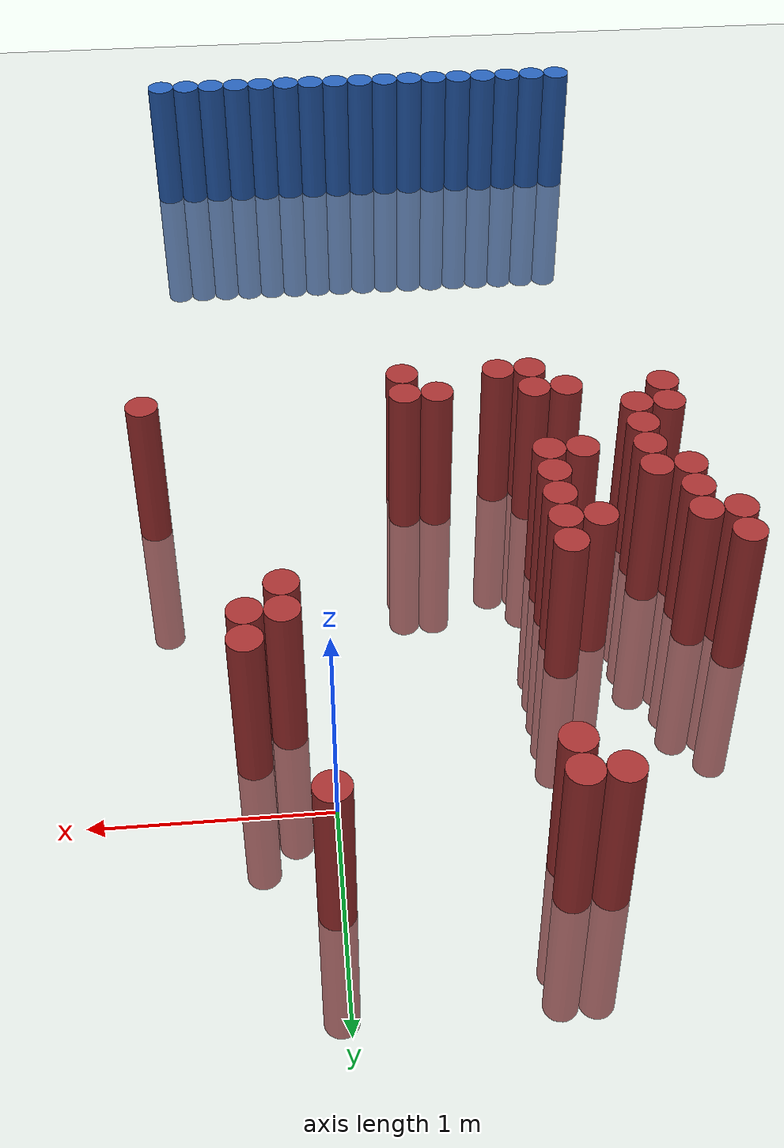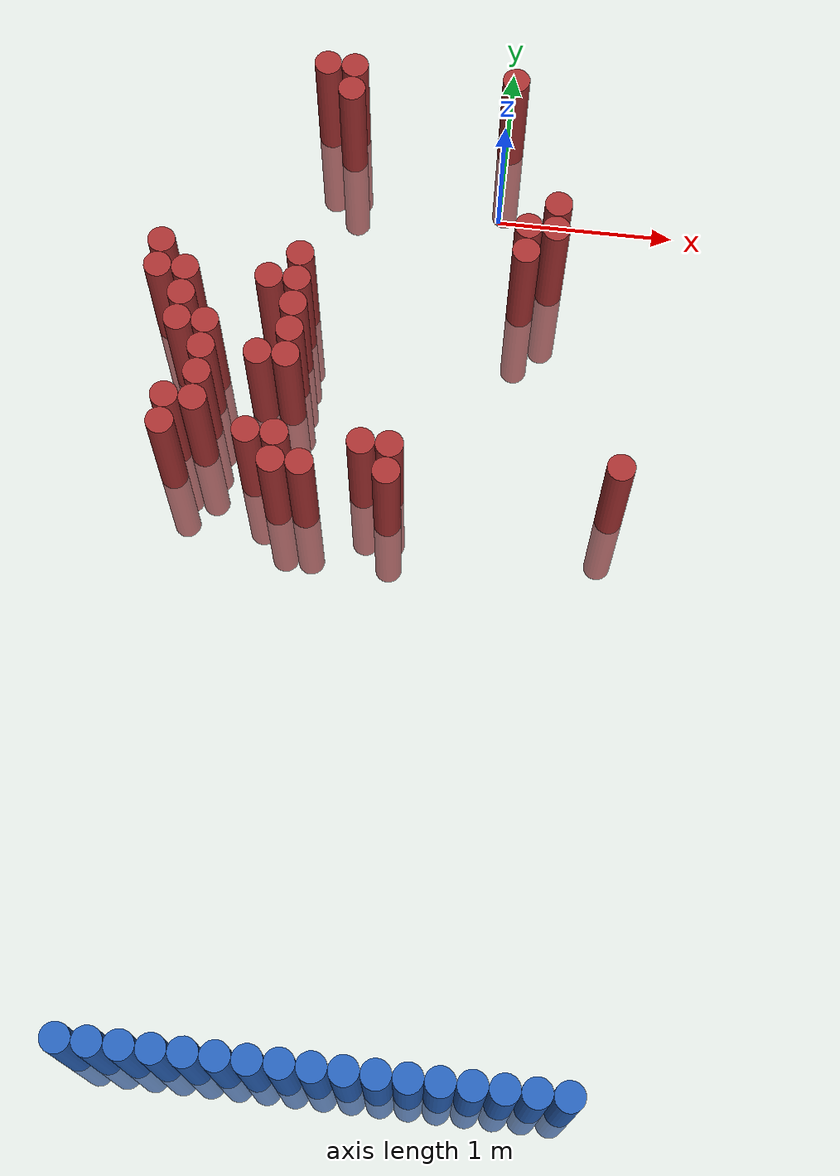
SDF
<sdf version="1.6">
 <world name="default">
  <model name="ground_plane">
   <static>1</static>
   <link name="link">
    <collision name="collision">
     <geometry><plane><normal>0 0 1</normal><size>100 100</size></plane></geometry>
     <surface><friction><ode><mu>100</mu><mu2>50</mu2></ode></friction></surface>
    </collision>
    <visual name="visual">
     <cast_shadows>0</cast_shadows>
     <geometry><plane><normal>0 0 1</normal><size>100 100</size></plane></geometry>
     <material>
      <script><uri>file://media/materials/scripts/gazebo.material</uri><name>Gazebo/Grey</name></script>
     </material>
    </visual>
   </link>
  </model>
  <model name="unit_cylinder_21">
   <static>1</static>
   <pose>0.775000 -4.925000 0.000000 0.000000 0.000000 0.000000</pose>
   <link name="link">
    <inertial>
     <mass>1</mass>
     <inertia><ixx>0.145833</ixx><ixy>0</ixy><ixz>0</ixz><iyy>0.145833</iyy><iyz>0</iyz><izz>0.125</izz></inertia>
    </inertial>
    <collision name="collision">
     <geometry><cylinder><radius>0.075000</radius><length>1.5</length></cylinder></geometry>
    </collision>
    <visual name="visual">
     <geometry><cylinder><radius>0.075000</radius><length>1.5</length></cylinder></geometry>
     <material>
      <ambient>0.152000 0.379000 0.720000 1</ambient>
      <diffuse>0.152000 0.379000 0.720000 1</diffuse>
     </material>
     <material>
      <script><name>Gazebo/Grey</name><uri>file://media/materials/scripts/gazebo.material</uri></script>
     </material>
    </visual>
   </link>
  </model>
  <model name="unit_cylinder_22">
   <static>1</static>
   <pose>0.625000 -4.925000 0.000000 0.000000 0.000000 0.000000</pose>
   <link name="link">
    <inertial>
     <mass>1</mass>
     <inertia><ixx>0.145833</ixx><ixy>0</ixy><ixz>0</ixz><iyy>0.145833</iyy><iyz>0</iyz><izz>0.125</izz></inertia>
    </inertial>
    <collision name="collision">
     <geometry><cylinder><radius>0.075000</radius><length>1.5</length></cylinder></geometry>
    </collision>
    <visual name="visual">
     <geometry><cylinder><radius>0.075000</radius><length>1.5</length></cylinder></geometry>
     <material>
      <ambient>0.152000 0.379000 0.720000 1</ambient>
      <diffuse>0.152000 0.379000 0.720000 1</diffuse>
     </material>
     <material>
      <script><name>Gazebo/Grey</name><uri>file://media/materials/scripts/gazebo.material</uri></script>
     </material>
    </visual>
   </link>
  </model>
  <model name="unit_cylinder_23">
   <static>1</static>
   <pose>0.475000 -4.925000 0.000000 0.000000 0.000000 0.000000</pose>
   <link name="link">
    <inertial>
     <mass>1</mass>
     <inertia><ixx>0.145833</ixx><ixy>0</ixy><ixz>0</ixz><iyy>0.145833</iyy><iyz>0</iyz><izz>0.125</izz></inertia>
    </inertial>
    <collision name="collision">
     <geometry><cylinder><radius>0.075000</radius><length>1.5</length></cylinder></geometry>
    </collision>
    <visual name="visual">
     <geometry><cylinder><radius>0.075000</radius><length>1.5</length></cylinder></geometry>
     <material>
      <ambient>0.152000 0.379000 0.720000 1</ambient>
      <diffuse>0.152000 0.379000 0.720000 1</diffuse>
     </material>
     <material>
      <script><name>Gazebo/Grey</name><uri>file://media/materials/scripts/gazebo.material</uri></script>
     </material>
    </visual>
   </link>
  </model>
  <model name="unit_cylinder_24">
   <static>1</static>
   <pose>0.325000 -4.925000 0.000000 0.000000 0.000000 0.000000</pose>
   <link name="link">
    <inertial>
     <mass>1</mass>
     <inertia><ixx>0.145833</ixx><ixy>0</ixy><ixz>0</ixz><iyy>0.145833</iyy><iyz>0</iyz><izz>0.125</izz></inertia>
    </inertial>
    <collision name="collision">
     <geometry><cylinder><radius>0.075000</radius><length>1.5</length></cylinder></geometry>
    </collision>
    <visual name="visual">
     <geometry><cylinder><radius>0.075000</radius><length>1.5</length></cylinder></geometry>
     <material>
      <ambient>0.152000 0.379000 0.720000 1</ambient>
      <diffuse>0.152000 0.379000 0.720000 1</diffuse>
     </material>
     <material>
      <script><name>Gazebo/Grey</name><uri>file://media/materials/scripts/gazebo.material</uri></script>
     </material>
    </visual>
   </link>
  </model>
  <model name="unit_cylinder_25">
   <static>1</static>
   <pose>0.175000 -4.925000 0.000000 0.000000 0.000000 0.000000</pose>
   <link name="link">
    <inertial>
     <mass>1</mass>
     <inertia><ixx>0.145833</ixx><ixy>0</ixy><ixz>0</ixz><iyy>0.145833</iyy><iyz>0</iyz><izz>0.125</izz></inertia>
    </inertial>
    <collision name="collision">
     <geometry><cylinder><radius>0.075000</radius><length>1.5</length></cylinder></geometry>
    </collision>
    <visual name="visual">
     <geometry><cylinder><radius>0.075000</radius><length>1.5</length></cylinder></geometry>
     <material>
      <ambient>0.152000 0.379000 0.720000 1</ambient>
      <diffuse>0.152000 0.379000 0.720000 1</diffuse>
     </material>
     <material>
      <script><name>Gazebo/Grey</name><uri>file://media/materials/scripts/gazebo.material</uri></script>
     </material>
    </visual>
   </link>
  </model>
  <model name="unit_cylinder_26">
   <static>1</static>
   <pose>0.025000 -4.925000 0.000000 0.000000 0.000000 0.000000</pose>
   <link name="link">
    <inertial>
     <mass>1</mass>
     <inertia><ixx>0.145833</ixx><ixy>0</ixy><ixz>0</ixz><iyy>0.145833</iyy><iyz>0</iyz><izz>0.125</izz></inertia>
    </inertial>
    <collision name="collision">
     <geometry><cylinder><radius>0.075000</radius><length>1.5</length></cylinder></geometry>
    </collision>
    <visual name="visual">
     <geometry><cylinder><radius>0.075000</radius><length>1.5</length></cylinder></geometry>
     <material>
      <ambient>0.152000 0.379000 0.720000 1</ambient>
      <diffuse>0.152000 0.379000 0.720000 1</diffuse>
     </material>
     <material>
      <script><name>Gazebo/Grey</name><uri>file://media/materials/scripts/gazebo.material</uri></script>
     </material>
    </visual>
   </link>
  </model>
  <model name="unit_cylinder_27">
   <static>1</static>
   <pose>-0.125000 -4.925000 0.000000 0.000000 0.000000 0.000000</pose>
   <link name="link">
    <inertial>
     <mass>1</mass>
     <inertia><ixx>0.145833</ixx><ixy>0</ixy><ixz>0</ixz><iyy>0.145833</iyy><iyz>0</iyz><izz>0.125</izz></inertia>
    </inertial>
    <collision name="collision">
     <geometry><cylinder><radius>0.075000</radius><length>1.5</length></cylinder></geometry>
    </collision>
    <visual name="visual">
     <geometry><cylinder><radius>0.075000</radius><length>1.5</length></cylinder></geometry>
     <material>
      <ambient>0.152000 0.379000 0.720000 1</ambient>
      <diffuse>0.152000 0.379000 0.720000 1</diffuse>
     </material>
     <material>
      <script><name>Gazebo/Grey</name><uri>file://media/materials/scripts/gazebo.material</uri></script>
     </material>
    </visual>
   </link>
  </model>
  <model name="unit_cylinder_28">
   <static>1</static>
   <pose>-0.275000 -4.925000 0.000000 0.000000 0.000000 0.000000</pose>
   <link name="link">
    <inertial>
     <mass>1</mass>
     <inertia><ixx>0.145833</ixx><ixy>0</ixy><ixz>0</ixz><iyy>0.145833</iyy><iyz>0</iyz><izz>0.125</izz></inertia>
    </inertial>
    <collision name="collision">
     <geometry><cylinder><radius>0.075000</radius><length>1.5</length></cylinder></geometry>
    </collision>
    <visual name="visual">
     <geometry><cylinder><radius>0.075000</radius><length>1.5</length></cylinder></geometry>
     <material>
      <ambient>0.152000 0.379000 0.720000 1</ambient>
      <diffuse>0.152000 0.379000 0.720000 1</diffuse>
     </material>
     <material>
      <script><name>Gazebo/Grey</name><uri>file://media/materials/scripts/gazebo.material</uri></script>
     </material>
    </visual>
   </link>
  </model>
  <model name="unit_cylinder_29">
   <static>1</static>
   <pose>-0.425000 -4.925000 0.000000 0.000000 0.000000 0.000000</pose>
   <link name="link">
    <inertial>
     <mass>1</mass>
     <inertia><ixx>0.145833</ixx><ixy>0</ixy><ixz>0</ixz><iyy>0.145833</iyy><iyz>0</iyz><izz>0.125</izz></inertia>
    </inertial>
    <collision name="collision">
     <geometry><cylinder><radius>0.075000</radius><length>1.5</length></cylinder></geometry>
    </collision>
    <visual name="visual">
     <geometry><cylinder><radius>0.075000</radius><length>1.5</length></cylinder></geometry>
     <material>
      <ambient>0.152000 0.379000 0.720000 1</ambient>
      <diffuse>0.152000 0.379000 0.720000 1</diffuse>
     </material>
     <material>
      <script><name>Gazebo/Grey</name><uri>file://media/materials/scripts/gazebo.material</uri></script>
     </material>
    </visual>
   </link>
  </model>
  <model name="unit_cylinder_30">
   <static>1</static>
   <pose>-0.575000 -4.925000 0.000000 0.000000 0.000000 0.000000</pose>
   <link name="link">
    <inertial>
     <mass>1</mass>
     <inertia><ixx>0.145833</ixx><ixy>0</ixy><ixz>0</ixz><iyy>0.145833</iyy><iyz>0</iyz><izz>0.125</izz></inertia>
    </inertial>
    <collision name="collision">
     <geometry><cylinder><radius>0.075000</radius><length>1.5</length></cylinder></geometry>
    </collision>
    <visual name="visual">
     <geometry><cylinder><radius>0.075000</radius><length>1.5</length></cylinder></geometry>
     <material>
      <ambient>0.152000 0.379000 0.720000 1</ambient>
      <diffuse>0.152000 0.379000 0.720000 1</diffuse>
     </material>
     <material>
      <script><name>Gazebo/Grey</name><uri>file://media/materials/scripts/gazebo.material</uri></script>
     </material>
    </visual>
   </link>
  </model>
  <model name="unit_cylinder_31">
   <static>1</static>
   <pose>-0.725000 -4.925000 0.000000 0.000000 0.000000 0.000000</pose>
   <link name="link">
    <inertial>
     <mass>1</mass>
     <inertia><ixx>0.145833</ixx><ixy>0</ixy><ixz>0</ixz><iyy>0.145833</iyy><iyz>0</iyz><izz>0.125</izz></inertia>
    </inertial>
    <collision name="collision">
     <geometry><cylinder><radius>0.075000</radius><length>1.5</length></cylinder></geometry>
    </collision>
    <visual name="visual">
     <geometry><cylinder><radius>0.075000</radius><length>1.5</length></cylinder></geometry>
     <material>
      <ambient>0.152000 0.379000 0.720000 1</ambient>
      <diffuse>0.152000 0.379000 0.720000 1</diffuse>
     </material>
     <material>
      <script><name>Gazebo/Grey</name><uri>file://media/materials/scripts/gazebo.material</uri></script>
     </material>
    </visual>
   </link>
  </model>
  <model name="unit_cylinder_32">
   <static>1</static>
   <pose>-0.875000 -4.925000 0.000000 0.000000 0.000000 0.000000</pose>
   <link name="link">
    <inertial>
     <mass>1</mass>
     <inertia><ixx>0.145833</ixx><ixy>0</ixy><ixz>0</ixz><iyy>0.145833</iyy><iyz>0</iyz><izz>0.125</izz></inertia>
    </inertial>
    <collision name="collision">
     <geometry><cylinder><radius>0.075000</radius><length>1.5</length></cylinder></geometry>
    </collision>
    <visual name="visual">
     <geometry><cylinder><radius>0.075000</radius><length>1.5</length></cylinder></geometry>
     <material>
      <ambient>0.152000 0.379000 0.720000 1</ambient>
      <diffuse>0.152000 0.379000 0.720000 1</diffuse>
     </material>
     <material>
      <script><name>Gazebo/Grey</name><uri>file://media/materials/scripts/gazebo.material</uri></script>
     </material>
    </visual>
   </link>
  </model>
  <model name="unit_cylinder_33">
   <static>1</static>
   <pose>-1.025000 -4.925000 0.000000 0.000000 0.000000 0.000000</pose>
   <link name="link">
    <inertial>
     <mass>1</mass>
     <inertia><ixx>0.145833</ixx><ixy>0</ixy><ixz>0</ixz><iyy>0.145833</iyy><iyz>0</iyz><izz>0.125</izz></inertia>
    </inertial>
    <collision name="collision">
     <geometry><cylinder><radius>0.075000</radius><length>1.5</length></cylinder></geometry>
    </collision>
    <visual name="visual">
     <geometry><cylinder><radius>0.075000</radius><length>1.5</length></cylinder></geometry>
     <material>
      <ambient>0.152000 0.379000 0.720000 1</ambient>
      <diffuse>0.152000 0.379000 0.720000 1</diffuse>
     </material>
     <material>
      <script><name>Gazebo/Grey</name><uri>file://media/materials/scripts/gazebo.material</uri></script>
     </material>
    </visual>
   </link>
  </model>
  <model name="unit_cylinder_34">
   <static>1</static>
   <pose>-1.175000 -4.925000 0.000000 0.000000 0.000000 0.000000</pose>
   <link name="link">
    <inertial>
     <mass>1</mass>
     <inertia><ixx>0.145833</ixx><ixy>0</ixy><ixz>0</ixz><iyy>0.145833</iyy><iyz>0</iyz><izz>0.125</izz></inertia>
    </inertial>
    <collision name="collision">
     <geometry><cylinder><radius>0.075000</radius><length>1.5</length></cylinder></geometry>
    </collision>
    <visual name="visual">
     <geometry><cylinder><radius>0.075000</radius><length>1.5</length></cylinder></geometry>
     <material>
      <ambient>0.152000 0.379000 0.720000 1</ambient>
      <diffuse>0.152000 0.379000 0.720000 1</diffuse>
     </material>
     <material>
      <script><name>Gazebo/Grey</name><uri>file://media/materials/scripts/gazebo.material</uri></script>
     </material>
    </visual>
   </link>
  </model>
  <model name="unit_cylinder_35">
   <static>1</static>
   <pose>-1.325000 -4.925000 0.000000 0.000000 0.000000 0.000000</pose>
   <link name="link">
    <inertial>
     <mass>1</mass>
     <inertia><ixx>0.145833</ixx><ixy>0</ixy><ixz>0</ixz><iyy>0.145833</iyy><iyz>0</iyz><izz>0.125</izz></inertia>
    </inertial>
    <collision name="collision">
     <geometry><cylinder><radius>0.075000</radius><length>1.5</length></cylinder></geometry>
    </collision>
    <visual name="visual">
     <geometry><cylinder><radius>0.075000</radius><length>1.5</length></cylinder></geometry>
     <material>
      <ambient>0.152000 0.379000 0.720000 1</ambient>
      <diffuse>0.152000 0.379000 0.720000 1</diffuse>
     </material>
     <material>
      <script><name>Gazebo/Grey</name><uri>file://media/materials/scripts/gazebo.material</uri></script>
     </material>
    </visual>
   </link>
  </model>
  <model name="unit_cylinder_36">
   <static>1</static>
   <pose>-1.475000 -4.925000 0.000000 0.000000 0.000000 0.000000</pose>
   <link name="link">
    <inertial>
     <mass>1</mass>
     <inertia><ixx>0.145833</ixx><ixy>0</ixy><ixz>0</ixz><iyy>0.145833</iyy><iyz>0</iyz><izz>0.125</izz></inertia>
    </inertial>
    <collision name="collision">
     <geometry><cylinder><radius>0.075000</radius><length>1.5</length></cylinder></geometry>
    </collision>
    <visual name="visual">
     <geometry><cylinder><radius>0.075000</radius><length>1.5</length></cylinder></geometry>
     <material>
      <ambient>0.152000 0.379000 0.720000 1</ambient>
      <diffuse>0.152000 0.379000 0.720000 1</diffuse>
     </material>
     <material>
      <script><name>Gazebo/Grey</name><uri>file://media/materials/scripts/gazebo.material</uri></script>
     </material>
    </visual>
   </link>
  </model>
  <model name="unit_cylinder_37">
   <static>1</static>
   <pose>-1.625000 -4.925000 0.000000 0.000000 0.000000 0.000000</pose>
   <link name="link">
    <inertial>
     <mass>1</mass>
     <inertia><ixx>0.145833</ixx><ixy>0</ixy><ixz>0</ixz><iyy>0.145833</iyy><iyz>0</iyz><izz>0.125</izz></inertia>
    </inertial>
    <collision name="collision">
     <geometry><cylinder><radius>0.075000</radius><length>1.5</length></cylinder></geometry>
    </collision>
    <visual name="visual">
     <geometry><cylinder><radius>0.075000</radius><length>1.5</length></cylinder></geometry>
     <material>
      <ambient>0.152000 0.379000 0.720000 1</ambient>
      <diffuse>0.152000 0.379000 0.720000 1</diffuse>
     </material>
     <material>
      <script><name>Gazebo/Grey</name><uri>file://media/materials/scripts/gazebo.material</uri></script>
     </material>
    </visual>
   </link>
  </model>
  <model name="unit_cylinder_333">
   <static>1</static>
   <pose>-1.775000 -0.875000 0.000000 0.000000 0.000000 0.000000</pose>
   <link name="link">
    <inertial>
     <mass>1</mass>
     <inertia><ixx>0.145833</ixx><ixy>0</ixy><ixz>0</ixz><iyy>0.145833</iyy><iyz>0</iyz><izz>0.125</izz></inertia>
    </inertial>
    <collision name="collision">
     <geometry><cylinder><radius>0.075000</radius><length>1.5</length></cylinder></geometry>
    </collision>
    <visual name="visual">
     <geometry><cylinder><radius>0.075000</radius><length>1.5</length></cylinder></geometry>
     <material>
      <ambient>0.648000 0.192000 0.192000 1</ambient>
      <diffuse>0.648000 0.192000 0.192000 1</diffuse>
     </material>
     <material>
      <script><name>Gazebo/Grey</name><uri>file://media/materials/scripts/gazebo.material</uri></script>
     </material>
    </visual>
   </link>
  </model>
  <model name="unit_cylinder_334">
   <static>1</static>
   <pose>-1.775000 -0.725000 0.000000 0.000000 0.000000 0.000000</pose>
   <link name="link">
    <inertial>
     <mass>1</mass>
     <inertia><ixx>0.145833</ixx><ixy>0</ixy><ixz>0</ixz><iyy>0.145833</iyy><iyz>0</iyz><izz>0.125</izz></inertia>
    </inertial>
    <collision name="collision">
     <geometry><cylinder><radius>0.075000</radius><length>1.5</length></cylinder></geometry>
    </collision>
    <visual name="visual">
     <geometry><cylinder><radius>0.075000</radius><length>1.5</length></cylinder></geometry>
     <material>
      <ambient>0.648000 0.192000 0.192000 1</ambient>
      <diffuse>0.648000 0.192000 0.192000 1</diffuse>
     </material>
     <material>
      <script><name>Gazebo/Grey</name><uri>file://media/materials/scripts/gazebo.material</uri></script>
     </material>
    </visual>
   </link>
  </model>
  <model name="unit_cylinder_340">
   <static>1</static>
   <pose>-1.625000 -1.775000 0.000000 0.000000 0.000000 0.000000</pose>
   <link name="link">
    <inertial>
     <mass>1</mass>
     <inertia><ixx>0.145833</ixx><ixy>0</ixy><ixz>0</ixz><iyy>0.145833</iyy><iyz>0</iyz><izz>0.125</izz></inertia>
    </inertial>
    <collision name="collision">
     <geometry><cylinder><radius>0.075000</radius><length>1.5</length></cylinder></geometry>
    </collision>
    <visual name="visual">
     <geometry><cylinder><radius>0.075000</radius><length>1.5</length></cylinder></geometry>
     <material>
      <ambient>0.648000 0.192000 0.192000 1</ambient>
      <diffuse>0.648000 0.192000 0.192000 1</diffuse>
     </material>
     <material>
      <script><name>Gazebo/Grey</name><uri>file://media/materials/scripts/gazebo.material</uri></script>
     </material>
    </visual>
   </link>
  </model>
  <model name="unit_cylinder_341">
   <static>1</static>
   <pose>-1.625000 -1.625000 0.000000 0.000000 0.000000 0.000000</pose>
   <link name="link">
    <inertial>
     <mass>1</mass>
     <inertia><ixx>0.145833</ixx><ixy>0</ixy><ixz>0</ixz><iyy>0.145833</iyy><iyz>0</iyz><izz>0.125</izz></inertia>
    </inertial>
    <collision name="collision">
     <geometry><cylinder><radius>0.075000</radius><length>1.5</length></cylinder></geometry>
    </collision>
    <visual name="visual">
     <geometry><cylinder><radius>0.075000</radius><length>1.5</length></cylinder></geometry>
     <material>
      <ambient>0.648000 0.192000 0.192000 1</ambient>
      <diffuse>0.648000 0.192000 0.192000 1</diffuse>
     </material>
     <material>
      <script><name>Gazebo/Grey</name><uri>file://media/materials/scripts/gazebo.material</uri></script>
     </material>
    </visual>
   </link>
  </model>
  <model name="unit_cylinder_342">
   <static>1</static>
   <pose>-1.625000 -1.175000 0.000000 0.000000 0.000000 0.000000</pose>
   <link name="link">
    <inertial>
     <mass>1</mass>
     <inertia><ixx>0.145833</ixx><ixy>0</ixy><ixz>0</ixz><iyy>0.145833</iyy><iyz>0</iyz><izz>0.125</izz></inertia>
    </inertial>
    <collision name="collision">
     <geometry><cylinder><radius>0.075000</radius><length>1.5</length></cylinder></geometry>
    </collision>
    <visual name="visual">
     <geometry><cylinder><radius>0.075000</radius><length>1.5</length></cylinder></geometry>
     <material>
      <ambient>0.648000 0.192000 0.192000 1</ambient>
      <diffuse>0.648000 0.192000 0.192000 1</diffuse>
     </material>
     <material>
      <script><name>Gazebo/Grey</name><uri>file://media/materials/scripts/gazebo.material</uri></script>
     </material>
    </visual>
   </link>
  </model>
  <model name="unit_cylinder_343">
   <static>1</static>
   <pose>-1.625000 -1.025000 0.000000 0.000000 0.000000 0.000000</pose>
   <link name="link">
    <inertial>
     <mass>1</mass>
     <inertia><ixx>0.145833</ixx><ixy>0</ixy><ixz>0</ixz><iyy>0.145833</iyy><iyz>0</iyz><izz>0.125</izz></inertia>
    </inertial>
    <collision name="collision">
     <geometry><cylinder><radius>0.075000</radius><length>1.5</length></cylinder></geometry>
    </collision>
    <visual name="visual">
     <geometry><cylinder><radius>0.075000</radius><length>1.5</length></cylinder></geometry>
     <material>
      <ambient>0.648000 0.192000 0.192000 1</ambient>
      <diffuse>0.648000 0.192000 0.192000 1</diffuse>
     </material>
     <material>
      <script><name>Gazebo/Grey</name><uri>file://media/materials/scripts/gazebo.material</uri></script>
     </material>
    </visual>
   </link>
  </model>
  <model name="unit_cylinder_344">
   <static>1</static>
   <pose>-1.625000 -0.875000 0.000000 0.000000 0.000000 0.000000</pose>
   <link name="link">
    <inertial>
     <mass>1</mass>
     <inertia><ixx>0.145833</ixx><ixy>0</ixy><ixz>0</ixz><iyy>0.145833</iyy><iyz>0</iyz><izz>0.125</izz></inertia>
    </inertial>
    <collision name="collision">
     <geometry><cylinder><radius>0.075000</radius><length>1.5</length></cylinder></geometry>
    </collision>
    <visual name="visual">
     <geometry><cylinder><radius>0.075000</radius><length>1.5</length></cylinder></geometry>
     <material>
      <ambient>0.648000 0.192000 0.192000 1</ambient>
      <diffuse>0.648000 0.192000 0.192000 1</diffuse>
     </material>
     <material>
      <script><name>Gazebo/Grey</name><uri>file://media/materials/scripts/gazebo.material</uri></script>
     </material>
    </visual>
   </link>
  </model>
  <model name="unit_cylinder_353">
   <static>1</static>
   <pose>-1.475000 -1.625000 0.000000 0.000000 0.000000 0.000000</pose>
   <link name="link">
    <inertial>
     <mass>1</mass>
     <inertia><ixx>0.145833</ixx><ixy>0</ixy><ixz>0</ixz><iyy>0.145833</iyy><iyz>0</iyz><izz>0.125</izz></inertia>
    </inertial>
    <collision name="collision">
     <geometry><cylinder><radius>0.075000</radius><length>1.5</length></cylinder></geometry>
    </collision>
    <visual name="visual">
     <geometry><cylinder><radius>0.075000</radius><length>1.5</length></cylinder></geometry>
     <material>
      <ambient>0.648000 0.192000 0.192000 1</ambient>
      <diffuse>0.648000 0.192000 0.192000 1</diffuse>
     </material>
     <material>
      <script><name>Gazebo/Grey</name><uri>file://media/materials/scripts/gazebo.material</uri></script>
     </material>
    </visual>
   </link>
  </model>
  <model name="unit_cylinder_354">
   <static>1</static>
   <pose>-1.475000 -1.475000 0.000000 0.000000 0.000000 0.000000</pose>
   <link name="link">
    <inertial>
     <mass>1</mass>
     <inertia><ixx>0.145833</ixx><ixy>0</ixy><ixz>0</ixz><iyy>0.145833</iyy><iyz>0</iyz><izz>0.125</izz></inertia>
    </inertial>
    <collision name="collision">
     <geometry><cylinder><radius>0.075000</radius><length>1.5</length></cylinder></geometry>
    </collision>
    <visual name="visual">
     <geometry><cylinder><radius>0.075000</radius><length>1.5</length></cylinder></geometry>
     <material>
      <ambient>0.648000 0.192000 0.192000 1</ambient>
      <diffuse>0.648000 0.192000 0.192000 1</diffuse>
     </material>
     <material>
      <script><name>Gazebo/Grey</name><uri>file://media/materials/scripts/gazebo.material</uri></script>
     </material>
    </visual>
   </link>
  </model>
  <model name="unit_cylinder_355">
   <static>1</static>
   <pose>-1.475000 -1.325000 0.000000 0.000000 0.000000 0.000000</pose>
   <link name="link">
    <inertial>
     <mass>1</mass>
     <inertia><ixx>0.145833</ixx><ixy>0</ixy><ixz>0</ixz><iyy>0.145833</iyy><iyz>0</iyz><izz>0.125</izz></inertia>
    </inertial>
    <collision name="collision">
     <geometry><cylinder><radius>0.075000</radius><length>1.5</length></cylinder></geometry>
    </collision>
    <visual name="visual">
     <geometry><cylinder><radius>0.075000</radius><length>1.5</length></cylinder></geometry>
     <material>
      <ambient>0.648000 0.192000 0.192000 1</ambient>
      <diffuse>0.648000 0.192000 0.192000 1</diffuse>
     </material>
     <material>
      <script><name>Gazebo/Grey</name><uri>file://media/materials/scripts/gazebo.material</uri></script>
     </material>
    </visual>
   </link>
  </model>
  <model name="unit_cylinder_356">
   <static>1</static>
   <pose>-1.475000 -1.175000 0.000000 0.000000 0.000000 0.000000</pose>
   <link name="link">
    <inertial>
     <mass>1</mass>
     <inertia><ixx>0.145833</ixx><ixy>0</ixy><ixz>0</ixz><iyy>0.145833</iyy><iyz>0</iyz><izz>0.125</izz></inertia>
    </inertial>
    <collision name="collision">
     <geometry><cylinder><radius>0.075000</radius><length>1.5</length></cylinder></geometry>
    </collision>
    <visual name="visual">
     <geometry><cylinder><radius>0.075000</radius><length>1.5</length></cylinder></geometry>
     <material>
      <ambient>0.648000 0.192000 0.192000 1</ambient>
      <diffuse>0.648000 0.192000 0.192000 1</diffuse>
     </material>
     <material>
      <script><name>Gazebo/Grey</name><uri>file://media/materials/scripts/gazebo.material</uri></script>
     </material>
    </visual>
   </link>
  </model>
  <model name="unit_cylinder_365">
   <static>1</static>
   <pose>-1.175000 -1.775000 0.000000 0.000000 0.000000 0.000000</pose>
   <link name="link">
    <inertial>
     <mass>1</mass>
     <inertia><ixx>0.145833</ixx><ixy>0</ixy><ixz>0</ixz><iyy>0.145833</iyy><iyz>0</iyz><izz>0.125</izz></inertia>
    </inertial>
    <collision name="collision">
     <geometry><cylinder><radius>0.075000</radius><length>1.5</length></cylinder></geometry>
    </collision>
    <visual name="visual">
     <geometry><cylinder><radius>0.075000</radius><length>1.5</length></cylinder></geometry>
     <material>
      <ambient>0.648000 0.192000 0.192000 1</ambient>
      <diffuse>0.648000 0.192000 0.192000 1</diffuse>
     </material>
     <material>
      <script><name>Gazebo/Grey</name><uri>file://media/materials/scripts/gazebo.material</uri></script>
     </material>
    </visual>
   </link>
  </model>
  <model name="unit_cylinder_366">
   <static>1</static>
   <pose>-1.175000 -1.325000 0.000000 0.000000 0.000000 0.000000</pose>
   <link name="link">
    <inertial>
     <mass>1</mass>
     <inertia><ixx>0.145833</ixx><ixy>0</ixy><ixz>0</ixz><iyy>0.145833</iyy><iyz>0</iyz><izz>0.125</izz></inertia>
    </inertial>
    <collision name="collision">
     <geometry><cylinder><radius>0.075000</radius><length>1.5</length></cylinder></geometry>
    </collision>
    <visual name="visual">
     <geometry><cylinder><radius>0.075000</radius><length>1.5</length></cylinder></geometry>
     <material>
      <ambient>0.648000 0.192000 0.192000 1</ambient>
      <diffuse>0.648000 0.192000 0.192000 1</diffuse>
     </material>
     <material>
      <script><name>Gazebo/Grey</name><uri>file://media/materials/scripts/gazebo.material</uri></script>
     </material>
    </visual>
   </link>
  </model>
  <model name="unit_cylinder_367">
   <static>1</static>
   <pose>-1.175000 -0.875000 0.000000 0.000000 0.000000 0.000000</pose>
   <link name="link">
    <inertial>
     <mass>1</mass>
     <inertia><ixx>0.145833</ixx><ixy>0</ixy><ixz>0</ixz><iyy>0.145833</iyy><iyz>0</iyz><izz>0.125</izz></inertia>
    </inertial>
    <collision name="collision">
     <geometry><cylinder><radius>0.075000</radius><length>1.5</length></cylinder></geometry>
    </collision>
    <visual name="visual">
     <geometry><cylinder><radius>0.075000</radius><length>1.5</length></cylinder></geometry>
     <material>
      <ambient>0.648000 0.192000 0.192000 1</ambient>
      <diffuse>0.648000 0.192000 0.192000 1</diffuse>
     </material>
     <material>
      <script><name>Gazebo/Grey</name><uri>file://media/materials/scripts/gazebo.material</uri></script>
     </material>
    </visual>
   </link>
  </model>
  <model name="unit_cylinder_369">
   <static>1</static>
   <pose>-1.025000 -1.925000 0.000000 0.000000 0.000000 0.000000</pose>
   <link name="link">
    <inertial>
     <mass>1</mass>
     <inertia><ixx>0.145833</ixx><ixy>0</ixy><ixz>0</ixz><iyy>0.145833</iyy><iyz>0</iyz><izz>0.125</izz></inertia>
    </inertial>
    <collision name="collision">
     <geometry><cylinder><radius>0.075000</radius><length>1.5</length></cylinder></geometry>
    </collision>
    <visual name="visual">
     <geometry><cylinder><radius>0.075000</radius><length>1.5</length></cylinder></geometry>
     <material>
      <ambient>0.648000 0.192000 0.192000 1</ambient>
      <diffuse>0.648000 0.192000 0.192000 1</diffuse>
     </material>
     <material>
      <script><name>Gazebo/Grey</name><uri>file://media/materials/scripts/gazebo.material</uri></script>
     </material>
    </visual>
   </link>
  </model>
  <model name="unit_cylinder_370">
   <static>1</static>
   <pose>-1.025000 -1.775000 0.000000 0.000000 0.000000 0.000000</pose>
   <link name="link">
    <inertial>
     <mass>1</mass>
     <inertia><ixx>0.145833</ixx><ixy>0</ixy><ixz>0</ixz><iyy>0.145833</iyy><iyz>0</iyz><izz>0.125</izz></inertia>
    </inertial>
    <collision name="collision">
     <geometry><cylinder><radius>0.075000</radius><length>1.5</length></cylinder></geometry>
    </collision>
    <visual name="visual">
     <geometry><cylinder><radius>0.075000</radius><length>1.5</length></cylinder></geometry>
     <material>
      <ambient>0.648000 0.192000 0.192000 1</ambient>
      <diffuse>0.648000 0.192000 0.192000 1</diffuse>
     </material>
     <material>
      <script><name>Gazebo/Grey</name><uri>file://media/materials/scripts/gazebo.material</uri></script>
     </material>
    </visual>
   </link>
  </model>
  <model name="unit_cylinder_371">
   <static>1</static>
   <pose>-1.025000 -1.325000 0.000000 0.000000 0.000000 0.000000</pose>
   <link name="link">
    <inertial>
     <mass>1</mass>
     <inertia><ixx>0.145833</ixx><ixy>0</ixy><ixz>0</ixz><iyy>0.145833</iyy><iyz>0</iyz><izz>0.125</izz></inertia>
    </inertial>
    <collision name="collision">
     <geometry><cylinder><radius>0.075000</radius><length>1.5</length></cylinder></geometry>
    </collision>
    <visual name="visual">
     <geometry><cylinder><radius>0.075000</radius><length>1.5</length></cylinder></geometry>
     <material>
      <ambient>0.648000 0.192000 0.192000 1</ambient>
      <diffuse>0.648000 0.192000 0.192000 1</diffuse>
     </material>
     <material>
      <script><name>Gazebo/Grey</name><uri>file://media/materials/scripts/gazebo.material</uri></script>
     </material>
    </visual>
   </link>
  </model>
  <model name="unit_cylinder_372">
   <static>1</static>
   <pose>-1.025000 -1.175000 0.000000 0.000000 0.000000 0.000000</pose>
   <link name="link">
    <inertial>
     <mass>1</mass>
     <inertia><ixx>0.145833</ixx><ixy>0</ixy><ixz>0</ixz><iyy>0.145833</iyy><iyz>0</iyz><izz>0.125</izz></inertia>
    </inertial>
    <collision name="collision">
     <geometry><cylinder><radius>0.075000</radius><length>1.5</length></cylinder></geometry>
    </collision>
    <visual name="visual">
     <geometry><cylinder><radius>0.075000</radius><length>1.5</length></cylinder></geometry>
     <material>
      <ambient>0.648000 0.192000 0.192000 1</ambient>
      <diffuse>0.648000 0.192000 0.192000 1</diffuse>
     </material>
     <material>
      <script><name>Gazebo/Grey</name><uri>file://media/materials/scripts/gazebo.material</uri></script>
     </material>
    </visual>
   </link>
  </model>
  <model name="unit_cylinder_373">
   <static>1</static>
   <pose>-1.025000 -1.025000 0.000000 0.000000 0.000000 0.000000</pose>
   <link name="link">
    <inertial>
     <mass>1</mass>
     <inertia><ixx>0.145833</ixx><ixy>0</ixy><ixz>0</ixz><iyy>0.145833</iyy><iyz>0</iyz><izz>0.125</izz></inertia>
    </inertial>
    <collision name="collision">
     <geometry><cylinder><radius>0.075000</radius><length>1.5</length></cylinder></geometry>
    </collision>
    <visual name="visual">
     <geometry><cylinder><radius>0.075000</radius><length>1.5</length></cylinder></geometry>
     <material>
      <ambient>0.648000 0.192000 0.192000 1</ambient>
      <diffuse>0.648000 0.192000 0.192000 1</diffuse>
     </material>
     <material>
      <script><name>Gazebo/Grey</name><uri>file://media/materials/scripts/gazebo.material</uri></script>
     </material>
    </visual>
   </link>
  </model>
  <model name="unit_cylinder_374">
   <static>1</static>
   <pose>-1.025000 -0.875000 0.000000 0.000000 0.000000 0.000000</pose>
   <link name="link">
    <inertial>
     <mass>1</mass>
     <inertia><ixx>0.145833</ixx><ixy>0</ixy><ixz>0</ixz><iyy>0.145833</iyy><iyz>0</iyz><izz>0.125</izz></inertia>
    </inertial>
    <collision name="collision">
     <geometry><cylinder><radius>0.075000</radius><length>1.5</length></cylinder></geometry>
    </collision>
    <visual name="visual">
     <geometry><cylinder><radius>0.075000</radius><length>1.5</length></cylinder></geometry>
     <material>
      <ambient>0.648000 0.192000 0.192000 1</ambient>
      <diffuse>0.648000 0.192000 0.192000 1</diffuse>
     </material>
     <material>
      <script><name>Gazebo/Grey</name><uri>file://media/materials/scripts/gazebo.material</uri></script>
     </material>
    </visual>
   </link>
  </model>
  <model name="unit_cylinder_375">
   <static>1</static>
   <pose>-1.025000 -0.725000 0.000000 0.000000 0.000000 0.000000</pose>
   <link name="link">
    <inertial>
     <mass>1</mass>
     <inertia><ixx>0.145833</ixx><ixy>0</ixy><ixz>0</ixz><iyy>0.145833</iyy><iyz>0</iyz><izz>0.125</izz></inertia>
    </inertial>
    <collision name="collision">
     <geometry><cylinder><radius>0.075000</radius><length>1.5</length></cylinder></geometry>
    </collision>
    <visual name="visual">
     <geometry><cylinder><radius>0.075000</radius><length>1.5</length></cylinder></geometry>
     <material>
      <ambient>0.648000 0.192000 0.192000 1</ambient>
      <diffuse>0.648000 0.192000 0.192000 1</diffuse>
     </material>
     <material>
      <script><name>Gazebo/Grey</name><uri>file://media/materials/scripts/gazebo.material</uri></script>
     </material>
    </visual>
   </link>
  </model>
  <model name="unit_cylinder_376">
   <static>1</static>
   <pose>-1.025000 0.475000 0.000000 0.000000 0.000000 0.000000</pose>
   <link name="link">
    <inertial>
     <mass>1</mass>
     <inertia><ixx>0.145833</ixx><ixy>0</ixy><ixz>0</ixz><iyy>0.145833</iyy><iyz>0</iyz><izz>0.125</izz></inertia>
    </inertial>
    <collision name="collision">
     <geometry><cylinder><radius>0.075000</radius><length>1.5</length></cylinder></geometry>
    </collision>
    <visual name="visual">
     <geometry><cylinder><radius>0.075000</radius><length>1.5</length></cylinder></geometry>
     <material>
      <ambient>0.648000 0.192000 0.192000 1</ambient>
      <diffuse>0.648000 0.192000 0.192000 1</diffuse>
     </material>
     <material>
      <script><name>Gazebo/Grey</name><uri>file://media/materials/scripts/gazebo.material</uri></script>
     </material>
    </visual>
   </link>
  </model>
  <model name="unit_cylinder_382">
   <static>1</static>
   <pose>-0.875000 -1.925000 0.000000 0.000000 0.000000 0.000000</pose>
   <link name="link">
    <inertial>
     <mass>1</mass>
     <inertia><ixx>0.145833</ixx><ixy>0</ixy><ixz>0</ixz><iyy>0.145833</iyy><iyz>0</iyz><izz>0.125</izz></inertia>
    </inertial>
    <collision name="collision">
     <geometry><cylinder><radius>0.075000</radius><length>1.5</length></cylinder></geometry>
    </collision>
    <visual name="visual">
     <geometry><cylinder><radius>0.075000</radius><length>1.5</length></cylinder></geometry>
     <material>
      <ambient>0.648000 0.192000 0.192000 1</ambient>
      <diffuse>0.648000 0.192000 0.192000 1</diffuse>
     </material>
     <material>
      <script><name>Gazebo/Grey</name><uri>file://media/materials/scripts/gazebo.material</uri></script>
     </material>
    </visual>
   </link>
  </model>
  <model name="unit_cylinder_383">
   <static>1</static>
   <pose>-0.875000 0.325000 0.000000 0.000000 0.000000 0.000000</pose>
   <link name="link">
    <inertial>
     <mass>1</mass>
     <inertia><ixx>0.145833</ixx><ixy>0</ixy><ixz>0</ixz><iyy>0.145833</iyy><iyz>0</iyz><izz>0.125</izz></inertia>
    </inertial>
    <collision name="collision">
     <geometry><cylinder><radius>0.075000</radius><length>1.5</length></cylinder></geometry>
    </collision>
    <visual name="visual">
     <geometry><cylinder><radius>0.075000</radius><length>1.5</length></cylinder></geometry>
     <material>
      <ambient>0.648000 0.192000 0.192000 1</ambient>
      <diffuse>0.648000 0.192000 0.192000 1</diffuse>
     </material>
     <material>
      <script><name>Gazebo/Grey</name><uri>file://media/materials/scripts/gazebo.material</uri></script>
     </material>
    </visual>
   </link>
  </model>
  <model name="unit_cylinder_384">
   <static>1</static>
   <pose>-0.875000 0.475000 0.000000 0.000000 0.000000 0.000000</pose>
   <link name="link">
    <inertial>
     <mass>1</mass>
     <inertia><ixx>0.145833</ixx><ixy>0</ixy><ixz>0</ixz><iyy>0.145833</iyy><iyz>0</iyz><izz>0.125</izz></inertia>
    </inertial>
    <collision name="collision">
     <geometry><cylinder><radius>0.075000</radius><length>1.5</length></cylinder></geometry>
    </collision>
    <visual name="visual">
     <geometry><cylinder><radius>0.075000</radius><length>1.5</length></cylinder></geometry>
     <material>
      <ambient>0.648000 0.192000 0.192000 1</ambient>
      <diffuse>0.648000 0.192000 0.192000 1</diffuse>
     </material>
     <material>
      <script><name>Gazebo/Grey</name><uri>file://media/materials/scripts/gazebo.material</uri></script>
     </material>
    </visual>
   </link>
  </model>
  <model name="unit_cylinder_396">
   <static>1</static>
   <pose>-0.575000 -1.775000 0.000000 0.000000 0.000000 0.000000</pose>
   <link name="link">
    <inertial>
     <mass>1</mass>
     <inertia><ixx>0.145833</ixx><ixy>0</ixy><ixz>0</ixz><iyy>0.145833</iyy><iyz>0</iyz><izz>0.125</izz></inertia>
    </inertial>
    <collision name="collision">
     <geometry><cylinder><radius>0.075000</radius><length>1.5</length></cylinder></geometry>
    </collision>
    <visual name="visual">
     <geometry><cylinder><radius>0.075000</radius><length>1.5</length></cylinder></geometry>
     <material>
      <ambient>0.648000 0.192000 0.192000 1</ambient>
      <diffuse>0.648000 0.192000 0.192000 1</diffuse>
     </material>
     <material>
      <script><name>Gazebo/Grey</name><uri>file://media/materials/scripts/gazebo.material</uri></script>
     </material>
    </visual>
   </link>
  </model>
  <model name="unit_cylinder_399">
   <static>1</static>
   <pose>-0.425000 -1.925000 0.000000 0.000000 0.000000 0.000000</pose>
   <link name="link">
    <inertial>
     <mass>1</mass>
     <inertia><ixx>0.145833</ixx><ixy>0</ixy><ixz>0</ixz><iyy>0.145833</iyy><iyz>0</iyz><izz>0.125</izz></inertia>
    </inertial>
    <collision name="collision">
     <geometry><cylinder><radius>0.075000</radius><length>1.5</length></cylinder></geometry>
    </collision>
    <visual name="visual">
     <geometry><cylinder><radius>0.075000</radius><length>1.5</length></cylinder></geometry>
     <material>
      <ambient>0.648000 0.192000 0.192000 1</ambient>
      <diffuse>0.648000 0.192000 0.192000 1</diffuse>
     </material>
     <material>
      <script><name>Gazebo/Grey</name><uri>file://media/materials/scripts/gazebo.material</uri></script>
     </material>
    </visual>
   </link>
  </model>
  <model name="unit_cylinder_400">
   <static>1</static>
   <pose>-0.425000 -1.775000 0.000000 0.000000 0.000000 0.000000</pose>
   <link name="link">
    <inertial>
     <mass>1</mass>
     <inertia><ixx>0.145833</ixx><ixy>0</ixy><ixz>0</ixz><iyy>0.145833</iyy><iyz>0</iyz><izz>0.125</izz></inertia>
    </inertial>
    <collision name="collision">
     <geometry><cylinder><radius>0.075000</radius><length>1.5</length></cylinder></geometry>
    </collision>
    <visual name="visual">
     <geometry><cylinder><radius>0.075000</radius><length>1.5</length></cylinder></geometry>
     <material>
      <ambient>0.648000 0.192000 0.192000 1</ambient>
      <diffuse>0.648000 0.192000 0.192000 1</diffuse>
     </material>
     <material>
      <script><name>Gazebo/Grey</name><uri>file://media/materials/scripts/gazebo.material</uri></script>
     </material>
    </visual>
   </link>
  </model>
  <model name="unit_cylinder_408">
   <static>1</static>
   <pose>0.025000 0.475000 0.000000 0.000000 0.000000 0.000000</pose>
   <link name="link">
    <inertial>
     <mass>1</mass>
     <inertia><ixx>0.145833</ixx><ixy>0</ixy><ixz>0</ixz><iyy>0.145833</iyy><iyz>0</iyz><izz>0.125</izz></inertia>
    </inertial>
    <collision name="collision">
     <geometry><cylinder><radius>0.075000</radius><length>1.5</length></cylinder></geometry>
    </collision>
    <visual name="visual">
     <geometry><cylinder><radius>0.075000</radius><length>1.5</length></cylinder></geometry>
     <material>
      <ambient>0.648000 0.192000 0.192000 1</ambient>
      <diffuse>0.648000 0.192000 0.192000 1</diffuse>
     </material>
     <material>
      <script><name>Gazebo/Grey</name><uri>file://media/materials/scripts/gazebo.material</uri></script>
     </material>
    </visual>
   </link>
  </model>
  <model name="unit_cylinder_410">
   <static>1</static>
   <pose>0.175000 -0.575000 0.000000 0.000000 0.000000 0.000000</pose>
   <link name="link">
    <inertial>
     <mass>1</mass>
     <inertia><ixx>0.145833</ixx><ixy>0</ixy><ixz>0</ixz><iyy>0.145833</iyy><iyz>0</iyz><izz>0.125</izz></inertia>
    </inertial>
    <collision name="collision">
     <geometry><cylinder><radius>0.075000</radius><length>1.5</length></cylinder></geometry>
    </collision>
    <visual name="visual">
     <geometry><cylinder><radius>0.075000</radius><length>1.5</length></cylinder></geometry>
     <material>
      <ambient>0.648000 0.192000 0.192000 1</ambient>
      <diffuse>0.648000 0.192000 0.192000 1</diffuse>
     </material>
     <material>
      <script><name>Gazebo/Grey</name><uri>file://media/materials/scripts/gazebo.material</uri></script>
     </material>
    </visual>
   </link>
  </model>
  <model name="unit_cylinder_411">
   <static>1</static>
   <pose>0.175000 -0.425000 0.000000 0.000000 0.000000 0.000000</pose>
   <link name="link">
    <inertial>
     <mass>1</mass>
     <inertia><ixx>0.145833</ixx><ixy>0</ixy><ixz>0</ixz><iyy>0.145833</iyy><iyz>0</iyz><izz>0.125</izz></inertia>
    </inertial>
    <collision name="collision">
     <geometry><cylinder><radius>0.075000</radius><length>1.5</length></cylinder></geometry>
    </collision>
    <visual name="visual">
     <geometry><cylinder><radius>0.075000</radius><length>1.5</length></cylinder></geometry>
     <material>
      <ambient>0.648000 0.192000 0.192000 1</ambient>
      <diffuse>0.648000 0.192000 0.192000 1</diffuse>
     </material>
     <material>
      <script><name>Gazebo/Grey</name><uri>file://media/materials/scripts/gazebo.material</uri></script>
     </material>
    </visual>
   </link>
  </model>
  <model name="unit_cylinder_413">
   <static>1</static>
   <pose>0.325000 -0.425000 0.000000 0.000000 0.000000 0.000000</pose>
   <link name="link">
    <inertial>
     <mass>1</mass>
     <inertia><ixx>0.145833</ixx><ixy>0</ixy><ixz>0</ixz><iyy>0.145833</iyy><iyz>0</iyz><izz>0.125</izz></inertia>
    </inertial>
    <collision name="collision">
     <geometry><cylinder><radius>0.075000</radius><length>1.5</length></cylinder></geometry>
    </collision>
    <visual name="visual">
     <geometry><cylinder><radius>0.075000</radius><length>1.5</length></cylinder></geometry>
     <material>
      <ambient>0.648000 0.192000 0.192000 1</ambient>
      <diffuse>0.648000 0.192000 0.192000 1</diffuse>
     </material>
     <material>
      <script><name>Gazebo/Grey</name><uri>file://media/materials/scripts/gazebo.material</uri></script>
     </material>
    </visual>
   </link>
  </model>
  <model name="unit_cylinder_414">
   <static>1</static>
   <pose>0.325000 -0.275000 0.000000 0.000000 0.000000 0.000000</pose>
   <link name="link">
    <inertial>
     <mass>1</mass>
     <inertia><ixx>0.145833</ixx><ixy>0</ixy><ixz>0</ixz><iyy>0.145833</iyy><iyz>0</iyz><izz>0.125</izz></inertia>
    </inertial>
    <collision name="collision">
     <geometry><cylinder><radius>0.075000</radius><length>1.5</length></cylinder></geometry>
    </collision>
    <visual name="visual">
     <geometry><cylinder><radius>0.075000</radius><length>1.5</length></cylinder></geometry>
     <material>
      <ambient>0.648000 0.192000 0.192000 1</ambient>
      <diffuse>0.648000 0.192000 0.192000 1</diffuse>
     </material>
     <material>
      <script><name>Gazebo/Grey</name><uri>file://media/materials/scripts/gazebo.material</uri></script>
     </material>
    </visual>
   </link>
  </model>
  <model name="unit_cylinder_415">
   <static>1</static>
   <pose>0.775000 -1.775000 0.000000 0.000000 0.000000 0.000000</pose>
   <link name="link">
    <inertial>
     <mass>1</mass>
     <inertia><ixx>0.145833</ixx><ixy>0</ixy><ixz>0</ixz><iyy>0.145833</iyy><iyz>0</iyz><izz>0.125</izz></inertia>
    </inertial>
    <collision name="collision">
     <geometry><cylinder><radius>0.075000</radius><length>1.5</length></cylinder></geometry>
    </collision>
    <visual name="visual">
     <geometry><cylinder><radius>0.075000</radius><length>1.5</length></cylinder></geometry>
     <material>
      <ambient>0.648000 0.192000 0.192000 1</ambient>
      <diffuse>0.648000 0.192000 0.192000 1</diffuse>
     </material>
     <material>
      <script><name>Gazebo/Grey</name><uri>file://media/materials/scripts/gazebo.material</uri></script>
     </material>
    </visual>
   </link>
  </model>
 </world>
</sdf>
